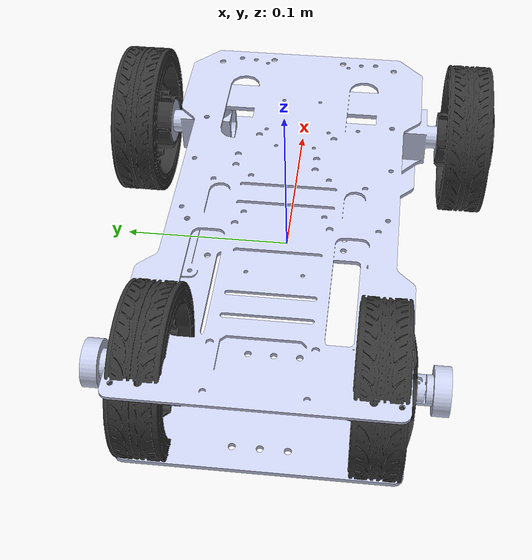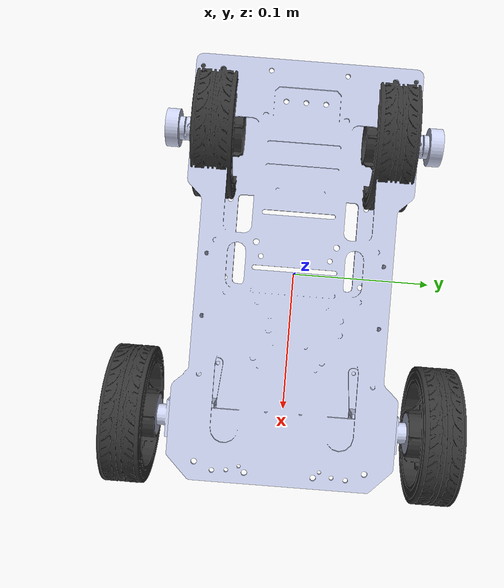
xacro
<?xml version="1.0"?>
<robot xmlns:xacro="http://www.ros.org/wiki/xacro" name="acamana">

  <!-- Define some constants -->
  <xacro:property name="PI" value="3.1415926535897931"/>

  <!-- Get package path for meshes -->
  <xacro:property name="mesh_path" value="package://acamana/meshes/"/>

  <!-- Base Link -->
  <link name="base_link">
    <inertial>
      <origin xyz="-0.000410773784337879 -4.50102945727632E-06 0.000188079948723217" rpy="0 0 0" />
      <mass value="0.224252192432071" />
      <inertia
        ixx="0.000384367775648917"
        ixy="3.76312515381557E-08"
        ixz="-3.24905280224815E-09"
        iyy="0.00152650491504501"
        iyz="7.02452171299624E-11"
        izz="0.00189778395864725" />
    </inertial>
    <visual>
      <origin xyz="0 0 0" rpy="0 0 0" />
      <geometry>
        <mesh filename="${mesh_path}base_link.STL" />
      </geometry>
      <material name="light_blue">
        <color rgba="0.792156862745098 0.819607843137255 0.933333333333333 1" />
      </material>
    </visual>
    <collision>
      <origin xyz="0 0 0" rpy="0 0 0" />
      <geometry>
        <mesh filename="${mesh_path}base_link.STL" />
      </geometry>
    </collision>
  </link>

  <!-- Left Steering Hinge -->
  <link name="left_steering_hinge">
    <inertial>
      <origin xyz="-0.00214055518577709 0.0114938412169271 -0.00101430442705201" rpy="0 0 0" />
      <mass value="0.019320077665136" />
      <inertia
        ixx="3.65091233921692E-06"
        ixy="-3.8359376652168E-07"
        ixz="-4.31566026293577E-07"
        iyy="4.40274174328948E-06"
        iyz="-1.57348260942121E-07"
        izz="4.35327403175562E-06" />
    </inertial>
    <visual>
      <origin xyz="0 0 0" rpy="0 0 0" />
      <geometry>
        <mesh filename="${mesh_path}left_steering_hinge.STL" />
      </geometry>
      <material name="light_blue" />
    </visual>
    <collision>
      <origin xyz="0 0 0" rpy="0 0 0" />
      <geometry>
        <mesh filename="${mesh_path}left_steering_hinge.STL" />
      </geometry>
    </collision>
  </link>

  <joint name="left_steering_hinge_joint" type="revolute">
    <origin xyz="0.11123 0.063711 -0.00033469" rpy="0 0 0" />
    <parent link="base_link" />
    <child link="left_steering_hinge" />
    <axis xyz="0 0 1" />
    <limit lower="-0.785" upper="0.785" effort="1999.9" velocity="348.9" />
  </joint>

  <!-- Left Front Wheel -->
  <link name="left_front_wheel">
    <inertial>
      <origin xyz="2.69864139146314E-07 0.000974501012028089 7.43504567637335E-08" rpy="0 0 0" />
      <mass value="0.124188351717402" />
      <inertia
        ixx="0.000108426219461981"
        ixy="6.16641829591181E-10"
        ixz="6.14953076918742E-09"
        iyy="0.000198988759881268"
        iyz="-1.79345986661271E-11"
        izz="0.000108425295656723" />
    </inertial>
    <visual>
      <origin xyz="0 0 0" rpy="0 0 0" />
      <geometry>
        <mesh filename="${mesh_path}left_front_wheel.STL" />
      </geometry>
      <material name="wheel_material">
        <color rgba="0.2 0.2 0.2 1" />
      </material>
    </visual>
    <collision>
      <origin xyz="0 0 0" rpy="0 0 0" />
      <geometry>
        <mesh filename="${mesh_path}left_front_wheel.STL" />
      </geometry>
    </collision>
  </link>

  <joint name="left_front_wheel_joint" type="continuous">
    <origin xyz="0 0.047063 0" rpy="0 0 0" />
    <parent link="left_steering_hinge" />
    <child link="left_front_wheel" />
    <axis xyz="0 -1 0" />
    <limit effort="259.9" velocity="529.9" />
  </joint>

  <!-- Right Steering Hinge -->
  <link name="right_steering_hinge">
    <inertial>
      <origin xyz="-0.00214065668285346 -0.0114939743395863 -0.00101615028127726" rpy="0 0 0" />
      <mass value="0.0193185139789688" />
      <inertia
        ixx="3.6507224134391E-06"
        ixy="3.83677614862953E-07"
        ixz="-4.31474916495668E-07"
        iyy="4.40170253054901E-06"
        iyz="1.57666090581151E-07"
        izz="4.3530528940828E-06" />
    </inertial>
    <visual>
      <origin xyz="0 0 0" rpy="0 0 0" />
      <geometry>
        <mesh filename="${mesh_path}right_steering_hinge.STL" />
      </geometry>
      <material name="light_blue" />
    </visual>
    <collision>
      <origin xyz="0 0 0" rpy="0 0 0" />
      <geometry>
        <mesh filename="${mesh_path}right_steering_hinge.STL" />
      </geometry>
    </collision>
  </link>

  <joint name="right_steering_hinge_joint" type="revolute">
    <origin xyz="0.11123 -0.063711 -0.00033469" rpy="0 0 0" />
    <parent link="base_link" />
    <child link="right_steering_hinge" />
    <axis xyz="0 0 1" />
    <limit lower="-0.785" upper="0.785" effort="1999.9" velocity="348.9" />
  </joint>

  <!-- Right Front Wheel -->
  <link name="right_front_wheel">
    <inertial>
      <origin xyz="-1.550417727883E-06 -0.000974395825432128 2.48294778512344E-06" rpy="0 0 0" />
      <mass value="0.124186468008551" />
      <inertia
        ixx="0.0001084386658304"
        ixy="8.2849214966896E-10"
        ixz="2.08769584709537E-08"
        iyy="0.000199003281991997"
        iyz="1.53854417197541E-09"
        izz="0.00010842819433505" />
    </inertial>
    <visual>
      <origin xyz="0 0 0" rpy="0 0 0" />
      <geometry>
        <mesh filename="${mesh_path}right_front_wheel.STL" />
      </geometry>
      <material name="wheel_material">
        <color rgba="0.2 0.2 0.2 1" />
      </material>
    </visual>
    <collision>
      <origin xyz="0 0 0" rpy="0 0 0" />
      <geometry>
        <mesh filename="${mesh_path}right_front_wheel.STL" />
      </geometry>
    </collision>
  </link>

  <joint name="right_front_wheel_joint" type="continuous">
    <origin xyz="0 -0.047063 0" rpy="0 0 0" />
    <parent link="right_steering_hinge" />
    <child link="right_front_wheel" />
    <axis xyz="0 -1 0" />
    <limit effort="259.9" velocity="529.9" />
  </joint>

  <!-- Left Rear Wheel -->
  <link name="left_rear_wheel">
    <inertial>
      <origin xyz="1.48678928679757E-06 0.000974279188147756 -2.39603507424775E-06" rpy="0 0 0" />
      <mass value="0.124185768823433" />
      <inertia
        ixx="0.000108447186828646"
        ixy="9.3356109022442E-10"
        ixz="-7.51084978124662E-09"
        iyy="0.000198999670249457"
        iyz="2.67909684507298E-10"
        izz="0.000108415507605727" />
    </inertial>
    <visual>
      <origin xyz="0 0 0" rpy="0 0 0" />
      <geometry>
        <mesh filename="${mesh_path}left_rear_wheel.STL" />
      </geometry>
      <material name="wheel_material">
        <color rgba="0.2 0.2 0.2 1" />
      </material>
    </visual>
    <collision>
      <origin xyz="0 0 0" rpy="0 0 0" />
      <geometry>
        <mesh filename="${mesh_path}left_rear_wheel.STL" />
      </geometry>
    </collision>
  </link>

  <joint name="left_rear_wheel_joint" type="continuous">
    <origin xyz="-0.10277 0.063711 -0.00033469" rpy="0 0 0" />
    <parent link="base_link" />
    <child link="left_rear_wheel" />
    <axis xyz="0 -1 0" />
    <limit effort="259.9" velocity="529.9" />
  </joint>

  <!-- Right Rear Wheel -->
  <link name="right_rear_wheel">
    <inertial>
      <origin xyz="1.46938456827378E-06 -0.000974279188147756 -2.39603507424775E-06" rpy="0 0 0" />
      <mass value="0.124185768823433" />
      <inertia
        ixx="0.000108447186828646"
        ixy="-9.3356109022442E-10"
        ixz="-7.51084978124662E-09"
        iyy="0.000198999670249457"
        iyz="-2.67909684507298E-10"
        izz="0.000108415507605727" />
    </inertial>
    <visual>
      <origin xyz="0 0 0" rpy="0 0 0" />
      <geometry>
        <mesh filename="${mesh_path}right_rear_wheel.STL" />
      </geometry>
      <material name="wheel_material">
        <color rgba="0.2 0.2 0.2 1" />
      </material>
    </visual>
    <collision>
      <origin xyz="0 0 0" rpy="0 0 0" />
      <geometry>
        <mesh filename="${mesh_path}right_rear_wheel.STL" />
      </geometry>
    </collision>
  </link>

  <joint name="right_rear_wheel_joint" type="continuous">
    <origin xyz="-0.10277 -0.063711 -0.00033469" rpy="0 0 0" />
    <parent link="base_link" />
    <child link="right_rear_wheel" />
    <axis xyz="0 -1 0" />
    <limit effort="259.9" velocity="529.9" />
  </joint>

  <!-- Ignition Gazebo plugins and materials -->

  <!-- Base Link Ignition Properties -->
  <gazebo reference="base_link">
    <material>
      <ambient>0.792 0.819 0.933 1</ambient>
      <diffuse>0.792 0.819 0.933 1</diffuse>
      <specular>0.1 0.1 0.1 1</specular>
    </material>
    <mu1>0.2</mu1>
    <mu2>0.2</mu2>
    <self_collide>true</self_collide>
  </gazebo>

  <!-- Steering Hinge Properties -->
  <gazebo reference="left_steering_hinge">
    <material>
      <ambient>0.792 0.819 0.933 1</ambient>
      <diffuse>0.792 0.819 0.933 1</diffuse>
      <specular>0.1 0.1 0.1 1</specular>
    </material>
  </gazebo>

  <gazebo reference="right_steering_hinge">
    <material>
      <ambient>0.792 0.819 0.933 1</ambient>
      <diffuse>0.792 0.819 0.933 1</diffuse>
      <specular>0.1 0.1 0.1 1</specular>
    </material>
  </gazebo>

  <!-- Wheel Properties -->
  <gazebo reference="left_front_wheel">
    <material>
      <ambient>0.2 0.2 0.2 1</ambient>
      <diffuse>0.2 0.2 0.2 1</diffuse>
      <specular>0.1 0.1 0.1 1</specular>
    </material>
    <mu1>1.0</mu1>
    <mu2>1.0</mu2>
    <kp>500000.0</kp>
    <kd>10.0</kd>
    <min_depth>0.001</min_depth>
    <max_vel>0.1</max_vel>
  </gazebo>

  <gazebo reference="right_front_wheel">
    <material>
      <ambient>0.2 0.2 0.2 1</ambient>
      <diffuse>0.2 0.2 0.2 1</diffuse>
      <specular>0.1 0.1 0.1 1</specular>
    </material>
    <mu1>1.0</mu1>
    <mu2>1.0</mu2>
    <kp>500000.0</kp>
    <kd>10.0</kd>
    <min_depth>0.001</min_depth>
    <max_vel>0.1</max_vel>
  </gazebo>

  <gazebo reference="left_rear_wheel">
    <material>
      <ambient>0.2 0.2 0.2 1</ambient>
      <diffuse>0.2 0.2 0.2 1</diffuse>
      <specular>0.1 0.1 0.1 1</specular>
    </material>
    <mu1>1.0</mu1>
    <mu2>1.0</mu2>
    <kp>500000.0</kp>
    <kd>10.0</kd>
    <min_depth>0.001</min_depth>
    <max_vel>0.1</max_vel>
  </gazebo>

  <gazebo reference="right_rear_wheel">
    <material>
      <ambient>0.2 0.2 0.2 1</ambient>
      <diffuse>0.2 0.2 0.2 1</diffuse>
      <specular>0.1 0.1 0.1 1</specular>
    </material>
    <mu1>1.0</mu1>
    <mu2>1.0</mu2>
    <kp>500000.0</kp>
    <kd>10.0</kd>
    <min_depth>0.001</min_depth>
    <max_vel>0.1</max_vel>
  </gazebo>

  <!-- Ignition Gazebo Ackermann Drive Plugin -->
  <gazebo>
    <plugin filename="ignition-gazebo-ackermann-steering-system" name="ignition::gazebo::systems::AckermannSteering">
      <!-- Vehicle configuration -->
      <front_left_joint>left_front_wheel_joint</front_left_joint>
      <front_right_joint>right_front_wheel_joint</front_right_joint>
      <rear_left_joint>left_rear_wheel_joint</rear_left_joint>
      <rear_right_joint>right_rear_wheel_joint</rear_right_joint>

      <!-- Steering joints -->
      <left_steering_joint>left_steering_hinge_joint</left_steering_joint>
      <right_steering_joint>right_steering_hinge_joint</right_steering_joint>

      <!-- Wheel separation and wheelbase -->
      <wheel_separation>0.127422</wheel_separation>
      <kingpin_width>0.127422</kingpin_width>
      <wheelbase>0.21333</wheelbase>
      <wheel_radius>0.05</wheel_radius>

      <!-- Steering limits -->
      <steering_limit>0.785</steering_limit>

      <!-- Topics -->
      <topic>/acamana/cmd_vel</topic>
      <odom_topic>/acamana/odom</odom_topic>
      <tf_topic>/tf</tf_topic>

      <!-- Frame IDs -->
      <frame_id>odom</frame_id>
      <child_frame_id>base_link</child_frame_id>

      <!-- Update rate -->
      <update_rate>100</update_rate>

      <!-- Publish odometry -->
      <publish_odom>true</publish_odom>
      <publish_odom_tf>true</publish_odom_tf>
      <publish_wheel_tf>false</publish_wheel_tf>
    </plugin>
  </gazebo>

  <!-- Joint State Publisher Plugin for Ignition -->
  <gazebo>
    <plugin filename="ignition-gazebo-joint-state-publisher-system" name="ignition::gazebo::systems::JointStatePublisher">
      <topic>/joint_states</topic>
      <update_rate>30</update_rate>
      <joint_name>left_steering_hinge_joint</joint_name>
      <joint_name>right_steering_hinge_joint</joint_name>
      <joint_name>left_front_wheel_joint</joint_name>
      <joint_name>right_front_wheel_joint</joint_name>
      <joint_name>left_rear_wheel_joint</joint_name>
      <joint_name>right_rear_wheel_joint</joint_name>
    </plugin>
  </gazebo>

  <!-- Pose Publisher Plugin -->
  <gazebo>
    <plugin filename="ignition-gazebo-pose-publisher-system" name="ignition::gazebo::systems::PosePublisher">
      <publish_link_pose>true</publish_link_pose>
      <publish_collision_pose>false</publish_collision_pose>
      <publish_visual_pose>false</publish_visual_pose>
      <use_pose_vector_msg>true</use_pose_vector_msg>
      <static_publisher>true</static_publisher>
      <static_update_frequency>1</static_update_frequency>
    </plugin>
  </gazebo>

</robot>
